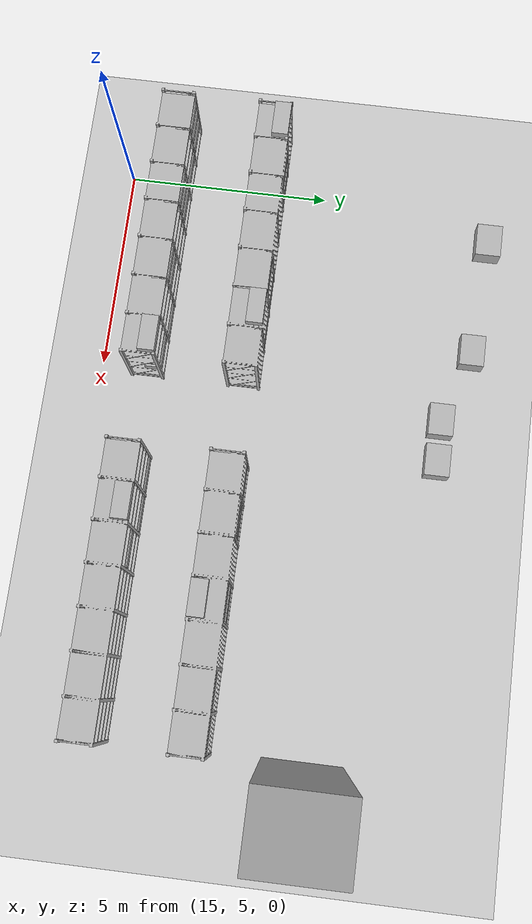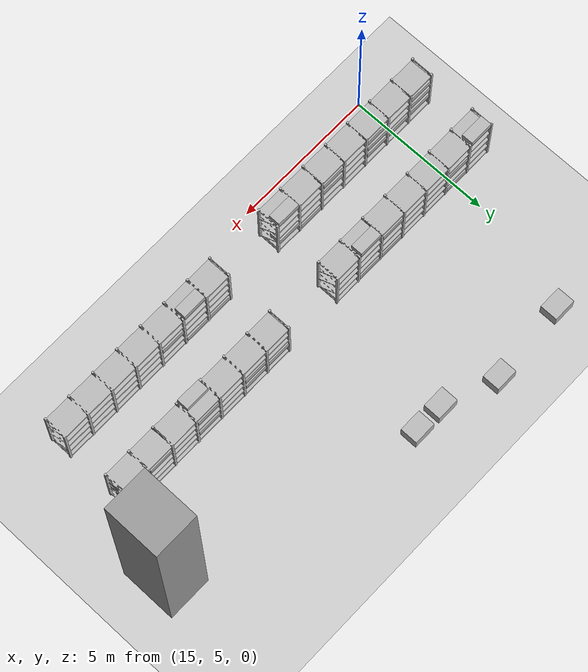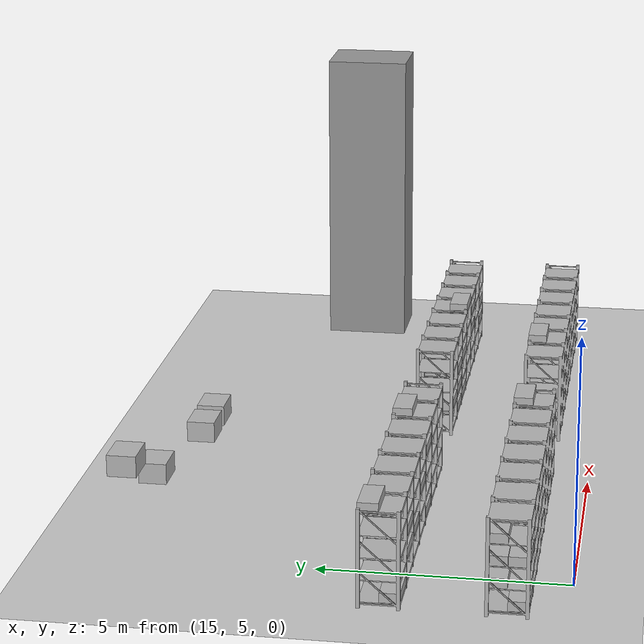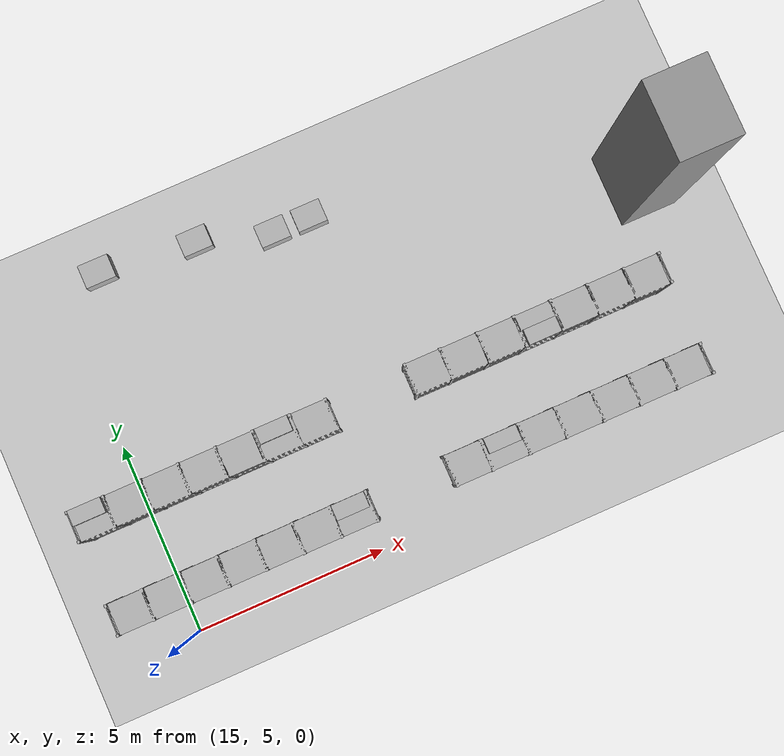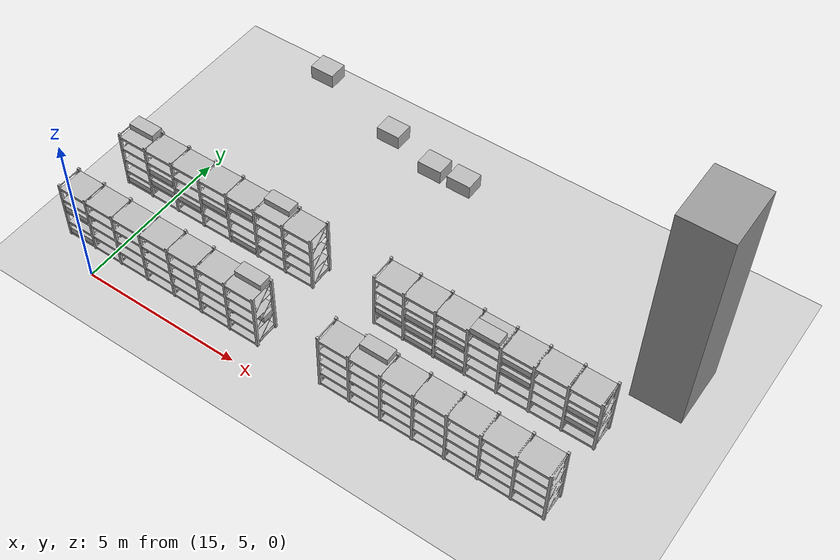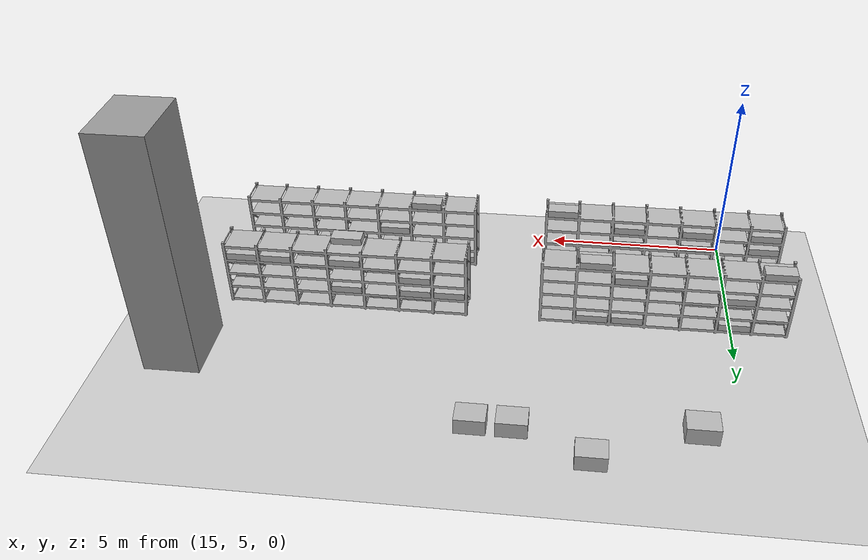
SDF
<sdf version="1.6">
 <world name="default">
  <model name="ground_plane">
   <static>1</static>
   <link name="link">
    <collision name="collision">
     <geometry><plane><normal>0 0 1</normal><size>100 100</size></plane></geometry>
     <surface><friction><ode><mu>100</mu><mu2>50</mu2></ode></friction></surface>
    </collision>
    <visual name="visual">
     <cast_shadows>0</cast_shadows>
     <geometry><plane><normal>0 0 1</normal><size>100 100</size></plane></geometry>
     <material>
      <script><uri>file://media/materials/scripts/gazebo.material</uri><name>Gazebo/Grey</name></script>
     </material>
    </visual>
   </link>
  </model>
  <include>
   <name>rack_B4_0</name>
   <uri>model://warehouse_rack_5lvl_7bay</uri>
   <pose>25.662 6.1523 0 0 0 1.5708</pose>
  </include>
  <model name="box_B_091">
   <pose>24.691 6.3573 1.102 0 0 1.5708</pose>
   <link name="link">
    <inertial>
     <mass>4.0</mass>
     <inertia><ixx>0.25417</ixx><iyy>0.06667</iyy><izz>0.29417</izz><ixy>0</ixy><ixz>0</ixz><iyz>0</iyz></inertia>
    </inertial>
    <collision name="collision">
     <geometry><box><size>0.4 0.85 0.2</size></box></geometry>
     <surface><friction><ode><mu>1.0</mu><mu2>1.0</mu2></ode></friction></surface>
    </collision>
    <visual name="visual">
     <cast_shadows>0</cast_shadows>
     <geometry><box><size>0.4 0.85 0.2</size></box></geometry>
     <material>
      <script>
       <uri>model://labeled_boxes/materials/scripts</uri>
       <uri>model://labeled_boxes/materials/textures</uri>
       <name>LabeledBox/B-091</name>
      </script>
     </material>
    </visual>
   </link>
  </model>
  <model name="box_B_093">
   <pose>23.72 6.3573 0.202 0 0 1.5708</pose>
   <link name="link">
    <inertial>
     <mass>4.0</mass>
     <inertia><ixx>0.25417</ixx><iyy>0.06667</iyy><izz>0.29417</izz><ixy>0</ixy><ixz>0</ixz><iyz>0</iyz></inertia>
    </inertial>
    <collision name="collision">
     <geometry><box><size>0.4 0.85 0.2</size></box></geometry>
     <surface><friction><ode><mu>1.0</mu><mu2>1.0</mu2></ode></friction></surface>
    </collision>
    <visual name="visual">
     <cast_shadows>0</cast_shadows>
     <geometry><box><size>0.4 0.85 0.2</size></box></geometry>
     <material>
      <script>
       <uri>model://labeled_boxes/materials/scripts</uri>
       <uri>model://labeled_boxes/materials/textures</uri>
       <name>LabeledBox/B-093</name>
      </script>
     </material>
    </visual>
   </link>
  </model>
  <model name="box_B_094">
   <pose>23.72 6.3573 2.002 0 0 1.5708</pose>
   <link name="link">
    <inertial>
     <mass>4.0</mass>
     <inertia><ixx>0.25417</ixx><iyy>0.06667</iyy><izz>0.29417</izz><ixy>0</ixy><ixz>0</ixz><iyz>0</iyz></inertia>
    </inertial>
    <collision name="collision">
     <geometry><box><size>0.4 0.85 0.2</size></box></geometry>
     <surface><friction><ode><mu>1.0</mu><mu2>1.0</mu2></ode></friction></surface>
    </collision>
    <visual name="visual">
     <cast_shadows>0</cast_shadows>
     <geometry><box><size>0.4 0.85 0.2</size></box></geometry>
     <material>
      <script>
       <uri>model://labeled_boxes/materials/scripts</uri>
       <uri>model://labeled_boxes/materials/textures</uri>
       <name>LabeledBox/B-094</name>
      </script>
     </material>
    </visual>
   </link>
  </model>
  <model name="box_B_096">
   <pose>22.766 6.3573 0.202 0 0 1.5708</pose>
   <link name="link">
    <inertial>
     <mass>4.0</mass>
     <inertia><ixx>0.25417</ixx><iyy>0.06667</iyy><izz>0.29417</izz><ixy>0</ixy><ixz>0</ixz><iyz>0</iyz></inertia>
    </inertial>
    <collision name="collision">
     <geometry><box><size>0.4 0.85 0.2</size></box></geometry>
     <surface><friction><ode><mu>1.0</mu><mu2>1.0</mu2></ode></friction></surface>
    </collision>
    <visual name="visual">
     <cast_shadows>0</cast_shadows>
     <geometry><box><size>0.4 0.85 0.2</size></box></geometry>
     <material>
      <script>
       <uri>model://labeled_boxes/materials/scripts</uri>
       <uri>model://labeled_boxes/materials/textures</uri>
       <name>LabeledBox/B-096</name>
      </script>
     </material>
    </visual>
   </link>
  </model>
  <include>
   <name>rack_B4_1</name>
   <uri>model://warehouse_rack_5lvl_7bay</uri>
   <pose>16.862 6.1523 0 0 0 1.5708</pose>
  </include>
  <model name="box_B_097">
   <pose>19.759 6.3573 0.652 0 0 1.5708</pose>
   <link name="link">
    <inertial>
     <mass>4.0</mass>
     <inertia><ixx>0.25417</ixx><iyy>0.06667</iyy><izz>0.29417</izz><ixy>0</ixy><ixz>0</ixz><iyz>0</iyz></inertia>
    </inertial>
    <collision name="collision">
     <geometry><box><size>0.4 0.85 0.2</size></box></geometry>
     <surface><friction><ode><mu>1.0</mu><mu2>1.0</mu2></ode></friction></surface>
    </collision>
    <visual name="visual">
     <cast_shadows>0</cast_shadows>
     <geometry><box><size>0.4 0.85 0.2</size></box></geometry>
     <material>
      <script>
       <uri>model://labeled_boxes/materials/scripts</uri>
       <uri>model://labeled_boxes/materials/textures</uri>
       <name>LabeledBox/B-097</name>
      </script>
     </material>
    </visual>
   </link>
  </model>
  <model name="box_B_101">
   <pose>19.759 6.3573 2.002 0 0 1.5708</pose>
   <link name="link">
    <inertial>
     <mass>4.0</mass>
     <inertia><ixx>0.25417</ixx><iyy>0.06667</iyy><izz>0.29417</izz><ixy>0</ixy><ixz>0</ixz><iyz>0</iyz></inertia>
    </inertial>
    <collision name="collision">
     <geometry><box><size>0.4 0.85 0.2</size></box></geometry>
     <surface><friction><ode><mu>1.0</mu><mu2>1.0</mu2></ode></friction></surface>
    </collision>
    <visual name="visual">
     <cast_shadows>0</cast_shadows>
     <geometry><box><size>0.4 0.85 0.2</size></box></geometry>
     <material>
      <script>
       <uri>model://labeled_boxes/materials/scripts</uri>
       <uri>model://labeled_boxes/materials/textures</uri>
       <name>LabeledBox/B-101</name>
      </script>
     </material>
    </visual>
   </link>
  </model>
  <model name="box_B_102">
   <pose>18.805 6.3573 0.202 0 0 1.5708</pose>
   <link name="link">
    <inertial>
     <mass>4.0</mass>
     <inertia><ixx>0.25417</ixx><iyy>0.06667</iyy><izz>0.29417</izz><ixy>0</ixy><ixz>0</ixz><iyz>0</iyz></inertia>
    </inertial>
    <collision name="collision">
     <geometry><box><size>0.4 0.85 0.2</size></box></geometry>
     <surface><friction><ode><mu>1.0</mu><mu2>1.0</mu2></ode></friction></surface>
    </collision>
    <visual name="visual">
     <cast_shadows>0</cast_shadows>
     <geometry><box><size>0.4 0.85 0.2</size></box></geometry>
     <material>
      <script>
       <uri>model://labeled_boxes/materials/scripts</uri>
       <uri>model://labeled_boxes/materials/textures</uri>
       <name>LabeledBox/B-102</name>
      </script>
     </material>
    </visual>
   </link>
  </model>
  <model name="box_B_103">
   <pose>17.834 6.3573 1.102 0 0 1.5708</pose>
   <link name="link">
    <inertial>
     <mass>4.0</mass>
     <inertia><ixx>0.25417</ixx><iyy>0.06667</iyy><izz>0.29417</izz><ixy>0</ixy><ixz>0</ixz><iyz>0</iyz></inertia>
    </inertial>
    <collision name="collision">
     <geometry><box><size>0.4 0.85 0.2</size></box></geometry>
     <surface><friction><ode><mu>1.0</mu><mu2>1.0</mu2></ode></friction></surface>
    </collision>
    <visual name="visual">
     <cast_shadows>0</cast_shadows>
     <geometry><box><size>0.4 0.85 0.2</size></box></geometry>
     <material>
      <script>
       <uri>model://labeled_boxes/materials/scripts</uri>
       <uri>model://labeled_boxes/materials/textures</uri>
       <name>LabeledBox/B-103</name>
      </script>
     </material>
    </visual>
   </link>
  </model>
  <model name="box_B_105">
   <pose>17.834 6.3573 1.552 0 0 1.5708</pose>
   <link name="link">
    <inertial>
     <mass>4.0</mass>
     <inertia><ixx>0.25417</ixx><iyy>0.06667</iyy><izz>0.29417</izz><ixy>0</ixy><ixz>0</ixz><iyz>0</iyz></inertia>
    </inertial>
    <collision name="collision">
     <geometry><box><size>0.4 0.85 0.2</size></box></geometry>
     <surface><friction><ode><mu>1.0</mu><mu2>1.0</mu2></ode></friction></surface>
    </collision>
    <visual name="visual">
     <cast_shadows>0</cast_shadows>
     <geometry><box><size>0.4 0.85 0.2</size></box></geometry>
     <material>
      <script>
       <uri>model://labeled_boxes/materials/scripts</uri>
       <uri>model://labeled_boxes/materials/textures</uri>
       <name>LabeledBox/B-105</name>
      </script>
     </material>
    </visual>
   </link>
  </model>
  <model name="box_B_108">
   <pose>15.891 6.3573 0.652 0 0 1.5708</pose>
   <link name="link">
    <inertial>
     <mass>4.0</mass>
     <inertia><ixx>0.25417</ixx><iyy>0.06667</iyy><izz>0.29417</izz><ixy>0</ixy><ixz>0</ixz><iyz>0</iyz></inertia>
    </inertial>
    <collision name="collision">
     <geometry><box><size>0.4 0.85 0.2</size></box></geometry>
     <surface><friction><ode><mu>1.0</mu><mu2>1.0</mu2></ode></friction></surface>
    </collision>
    <visual name="visual">
     <cast_shadows>0</cast_shadows>
     <geometry><box><size>0.4 0.85 0.2</size></box></geometry>
     <material>
      <script>
       <uri>model://labeled_boxes/materials/scripts</uri>
       <uri>model://labeled_boxes/materials/textures</uri>
       <name>LabeledBox/B-108</name>
      </script>
     </material>
    </visual>
   </link>
  </model>
  <model name="box_B_109">
   <pose>15.891 6.3573 1.102 0 0 1.5708</pose>
   <link name="link">
    <inertial>
     <mass>4.0</mass>
     <inertia><ixx>0.25417</ixx><iyy>0.06667</iyy><izz>0.29417</izz><ixy>0</ixy><ixz>0</ixz><iyz>0</iyz></inertia>
    </inertial>
    <collision name="collision">
     <geometry><box><size>0.4 0.85 0.2</size></box></geometry>
     <surface><friction><ode><mu>1.0</mu><mu2>1.0</mu2></ode></friction></surface>
    </collision>
    <visual name="visual">
     <cast_shadows>0</cast_shadows>
     <geometry><box><size>0.4 0.85 0.2</size></box></geometry>
     <material>
      <script>
       <uri>model://labeled_boxes/materials/scripts</uri>
       <uri>model://labeled_boxes/materials/textures</uri>
       <name>LabeledBox/B-109</name>
      </script>
     </material>
    </visual>
   </link>
  </model>
  <model name="box_B_111">
   <pose>15.891 6.3573 1.552 0 0 1.5708</pose>
   <link name="link">
    <inertial>
     <mass>4.0</mass>
     <inertia><ixx>0.25417</ixx><iyy>0.06667</iyy><izz>0.29417</izz><ixy>0</ixy><ixz>0</ixz><iyz>0</iyz></inertia>
    </inertial>
    <collision name="collision">
     <geometry><box><size>0.4 0.85 0.2</size></box></geometry>
     <surface><friction><ode><mu>1.0</mu><mu2>1.0</mu2></ode></friction></surface>
    </collision>
    <visual name="visual">
     <cast_shadows>0</cast_shadows>
     <geometry><box><size>0.4 0.85 0.2</size></box></geometry>
     <material>
      <script>
       <uri>model://labeled_boxes/materials/scripts</uri>
       <uri>model://labeled_boxes/materials/textures</uri>
       <name>LabeledBox/B-111</name>
      </script>
     </material>
    </visual>
   </link>
  </model>
  <model name="box_B_112">
   <pose>14.92 6.3573 0.652 0 0 1.5708</pose>
   <link name="link">
    <inertial>
     <mass>4.0</mass>
     <inertia><ixx>0.25417</ixx><iyy>0.06667</iyy><izz>0.29417</izz><ixy>0</ixy><ixz>0</ixz><iyz>0</iyz></inertia>
    </inertial>
    <collision name="collision">
     <geometry><box><size>0.4 0.85 0.2</size></box></geometry>
     <surface><friction><ode><mu>1.0</mu><mu2>1.0</mu2></ode></friction></surface>
    </collision>
    <visual name="visual">
     <cast_shadows>0</cast_shadows>
     <geometry><box><size>0.4 0.85 0.2</size></box></geometry>
     <material>
      <script>
       <uri>model://labeled_boxes/materials/scripts</uri>
       <uri>model://labeled_boxes/materials/textures</uri>
       <name>LabeledBox/B-112</name>
      </script>
     </material>
    </visual>
   </link>
  </model>
  <model name="box_B_114">
   <pose>13.966 5.9473 0.202 0 0 1.5708</pose>
   <link name="link">
    <inertial>
     <mass>4.0</mass>
     <inertia><ixx>0.25417</ixx><iyy>0.06667</iyy><izz>0.29417</izz><ixy>0</ixy><ixz>0</ixz><iyz>0</iyz></inertia>
    </inertial>
    <collision name="collision">
     <geometry><box><size>0.4 0.85 0.2</size></box></geometry>
     <surface><friction><ode><mu>1.0</mu><mu2>1.0</mu2></ode></friction></surface>
    </collision>
    <visual name="visual">
     <cast_shadows>0</cast_shadows>
     <geometry><box><size>0.4 0.85 0.2</size></box></geometry>
     <material>
      <script>
       <uri>model://labeled_boxes/materials/scripts</uri>
       <uri>model://labeled_boxes/materials/textures</uri>
       <name>LabeledBox/B-114</name>
      </script>
     </material>
    </visual>
   </link>
  </model>
  <model name="box_B_115">
   <pose>13.966 6.3573 0.652 0 0 1.5708</pose>
   <link name="link">
    <inertial>
     <mass>4.0</mass>
     <inertia><ixx>0.25417</ixx><iyy>0.06667</iyy><izz>0.29417</izz><ixy>0</ixy><ixz>0</ixz><iyz>0</iyz></inertia>
    </inertial>
    <collision name="collision">
     <geometry><box><size>0.4 0.85 0.2</size></box></geometry>
     <surface><friction><ode><mu>1.0</mu><mu2>1.0</mu2></ode></friction></surface>
    </collision>
    <visual name="visual">
     <cast_shadows>0</cast_shadows>
     <geometry><box><size>0.4 0.85 0.2</size></box></geometry>
     <material>
      <script>
       <uri>model://labeled_boxes/materials/scripts</uri>
       <uri>model://labeled_boxes/materials/textures</uri>
       <name>LabeledBox/B-115</name>
      </script>
     </material>
    </visual>
   </link>
  </model>
  <model name="box_B_116">
   <pose>13.966 5.9473 1.102 0 0 1.5708</pose>
   <link name="link">
    <inertial>
     <mass>4.0</mass>
     <inertia><ixx>0.25417</ixx><iyy>0.06667</iyy><izz>0.29417</izz><ixy>0</ixy><ixz>0</ixz><iyz>0</iyz></inertia>
    </inertial>
    <collision name="collision">
     <geometry><box><size>0.4 0.85 0.2</size></box></geometry>
     <surface><friction><ode><mu>1.0</mu><mu2>1.0</mu2></ode></friction></surface>
    </collision>
    <visual name="visual">
     <cast_shadows>0</cast_shadows>
     <geometry><box><size>0.4 0.85 0.2</size></box></geometry>
     <material>
      <script>
       <uri>model://labeled_boxes/materials/scripts</uri>
       <uri>model://labeled_boxes/materials/textures</uri>
       <name>LabeledBox/B-116</name>
      </script>
     </material>
    </visual>
   </link>
  </model>
  <model name="box_B_117">
   <pose>13.966 6.3573 1.102 0 0 1.5708</pose>
   <link name="link">
    <inertial>
     <mass>4.0</mass>
     <inertia><ixx>0.25417</ixx><iyy>0.06667</iyy><izz>0.29417</izz><ixy>0</ixy><ixz>0</ixz><iyz>0</iyz></inertia>
    </inertial>
    <collision name="collision">
     <geometry><box><size>0.4 0.85 0.2</size></box></geometry>
     <surface><friction><ode><mu>1.0</mu><mu2>1.0</mu2></ode></friction></surface>
    </collision>
    <visual name="visual">
     <cast_shadows>0</cast_shadows>
     <geometry><box><size>0.4 0.85 0.2</size></box></geometry>
     <material>
      <script>
       <uri>model://labeled_boxes/materials/scripts</uri>
       <uri>model://labeled_boxes/materials/textures</uri>
       <name>LabeledBox/B-117</name>
      </script>
     </material>
    </visual>
   </link>
  </model>
  <model name="box_B_118">
   <pose>13.966 6.3573 1.552 0 0 1.5708</pose>
   <link name="link">
    <inertial>
     <mass>4.0</mass>
     <inertia><ixx>0.25417</ixx><iyy>0.06667</iyy><izz>0.29417</izz><ixy>0</ixy><ixz>0</ixz><iyz>0</iyz></inertia>
    </inertial>
    <collision name="collision">
     <geometry><box><size>0.4 0.85 0.2</size></box></geometry>
     <surface><friction><ode><mu>1.0</mu><mu2>1.0</mu2></ode></friction></surface>
    </collision>
    <visual name="visual">
     <cast_shadows>0</cast_shadows>
     <geometry><box><size>0.4 0.85 0.2</size></box></geometry>
     <material>
      <script>
       <uri>model://labeled_boxes/materials/scripts</uri>
       <uri>model://labeled_boxes/materials/textures</uri>
       <name>LabeledBox/B-118</name>
      </script>
     </material>
    </visual>
   </link>
  </model>
  <include>
   <name>rack_B5_0</name>
   <uri>model://warehouse_rack_5lvl_7bay</uri>
   <pose>25.662 8.5523 0 0 0 1.5708</pose>
  </include>
  <model name="box_B_119">
   <pose>28.559 8.3473 0.652 0 0 1.5708</pose>
   <link name="link">
    <inertial>
     <mass>4.0</mass>
     <inertia><ixx>0.25417</ixx><iyy>0.06667</iyy><izz>0.29417</izz><ixy>0</ixy><ixz>0</ixz><iyz>0</iyz></inertia>
    </inertial>
    <collision name="collision">
     <geometry><box><size>0.4 0.85 0.2</size></box></geometry>
     <surface><friction><ode><mu>1.0</mu><mu2>1.0</mu2></ode></friction></surface>
    </collision>
    <visual name="visual">
     <cast_shadows>0</cast_shadows>
     <geometry><box><size>0.4 0.85 0.2</size></box></geometry>
     <material>
      <script>
       <uri>model://labeled_boxes/materials/scripts</uri>
       <uri>model://labeled_boxes/materials/textures</uri>
       <name>LabeledBox/B-119</name>
      </script>
     </material>
    </visual>
   </link>
  </model>
  <model name="box_B_120">
   <pose>28.559 8.3473 1.102 0 0 1.5708</pose>
   <link name="link">
    <inertial>
     <mass>4.0</mass>
     <inertia><ixx>0.25417</ixx><iyy>0.06667</iyy><izz>0.29417</izz><ixy>0</ixy><ixz>0</ixz><iyz>0</iyz></inertia>
    </inertial>
    <collision name="collision">
     <geometry><box><size>0.4 0.85 0.2</size></box></geometry>
     <surface><friction><ode><mu>1.0</mu><mu2>1.0</mu2></ode></friction></surface>
    </collision>
    <visual name="visual">
     <cast_shadows>0</cast_shadows>
     <geometry><box><size>0.4 0.85 0.2</size></box></geometry>
     <material>
      <script>
       <uri>model://labeled_boxes/materials/scripts</uri>
       <uri>model://labeled_boxes/materials/textures</uri>
       <name>LabeledBox/B-120</name>
      </script>
     </material>
    </visual>
   </link>
  </model>
  <model name="box_B_121">
   <pose>28.559 8.7573 1.552 0 0 1.5708</pose>
   <link name="link">
    <inertial>
     <mass>4.0</mass>
     <inertia><ixx>0.25417</ixx><iyy>0.06667</iyy><izz>0.29417</izz><ixy>0</ixy><ixz>0</ixz><iyz>0</iyz></inertia>
    </inertial>
    <collision name="collision">
     <geometry><box><size>0.4 0.85 0.2</size></box></geometry>
     <surface><friction><ode><mu>1.0</mu><mu2>1.0</mu2></ode></friction></surface>
    </collision>
    <visual name="visual">
     <cast_shadows>0</cast_shadows>
     <geometry><box><size>0.4 0.85 0.2</size></box></geometry>
     <material>
      <script>
       <uri>model://labeled_boxes/materials/scripts</uri>
       <uri>model://labeled_boxes/materials/textures</uri>
       <name>LabeledBox/B-121</name>
      </script>
     </material>
    </visual>
   </link>
  </model>
  <model name="box_B_122">
   <pose>27.605 8.7573 1.552 0 0 1.5708</pose>
   <link name="link">
    <inertial>
     <mass>4.0</mass>
     <inertia><ixx>0.25417</ixx><iyy>0.06667</iyy><izz>0.29417</izz><ixy>0</ixy><ixz>0</ixz><iyz>0</iyz></inertia>
    </inertial>
    <collision name="collision">
     <geometry><box><size>0.4 0.85 0.2</size></box></geometry>
     <surface><friction><ode><mu>1.0</mu><mu2>1.0</mu2></ode></friction></surface>
    </collision>
    <visual name="visual">
     <cast_shadows>0</cast_shadows>
     <geometry><box><size>0.4 0.85 0.2</size></box></geometry>
     <material>
      <script>
       <uri>model://labeled_boxes/materials/scripts</uri>
       <uri>model://labeled_boxes/materials/textures</uri>
       <name>LabeledBox/B-122</name>
      </script>
     </material>
    </visual>
   </link>
  </model>
  <model name="box_B_123">
   <pose>26.634 8.3473 1.102 0 0 1.5708</pose>
   <link name="link">
    <inertial>
     <mass>4.0</mass>
     <inertia><ixx>0.25417</ixx><iyy>0.06667</iyy><izz>0.29417</izz><ixy>0</ixy><ixz>0</ixz><iyz>0</iyz></inertia>
    </inertial>
    <collision name="collision">
     <geometry><box><size>0.4 0.85 0.2</size></box></geometry>
     <surface><friction><ode><mu>1.0</mu><mu2>1.0</mu2></ode></friction></surface>
    </collision>
    <visual name="visual">
     <cast_shadows>0</cast_shadows>
     <geometry><box><size>0.4 0.85 0.2</size></box></geometry>
     <material>
      <script>
       <uri>model://labeled_boxes/materials/scripts</uri>
       <uri>model://labeled_boxes/materials/textures</uri>
       <name>LabeledBox/B-123</name>
      </script>
     </material>
    </visual>
   </link>
  </model>
  <model name="box_B_124">
   <pose>26.634 8.3473 1.552 0 0 1.5708</pose>
   <link name="link">
    <inertial>
     <mass>4.0</mass>
     <inertia><ixx>0.25417</ixx><iyy>0.06667</iyy><izz>0.29417</izz><ixy>0</ixy><ixz>0</ixz><iyz>0</iyz></inertia>
    </inertial>
    <collision name="collision">
     <geometry><box><size>0.4 0.85 0.2</size></box></geometry>
     <surface><friction><ode><mu>1.0</mu><mu2>1.0</mu2></ode></friction></surface>
    </collision>
    <visual name="visual">
     <cast_shadows>0</cast_shadows>
     <geometry><box><size>0.4 0.85 0.2</size></box></geometry>
     <material>
      <script>
       <uri>model://labeled_boxes/materials/scripts</uri>
       <uri>model://labeled_boxes/materials/textures</uri>
       <name>LabeledBox/B-124</name>
      </script>
     </material>
    </visual>
   </link>
  </model>
  <model name="box_B_125">
   <pose>25.662 8.7573 0.652 0 0 1.5708</pose>
   <link name="link">
    <inertial>
     <mass>4.0</mass>
     <inertia><ixx>0.25417</ixx><iyy>0.06667</iyy><izz>0.29417</izz><ixy>0</ixy><ixz>0</ixz><iyz>0</iyz></inertia>
    </inertial>
    <collision name="collision">
     <geometry><box><size>0.4 0.85 0.2</size></box></geometry>
     <surface><friction><ode><mu>1.0</mu><mu2>1.0</mu2></ode></friction></surface>
    </collision>
    <visual name="visual">
     <cast_shadows>0</cast_shadows>
     <geometry><box><size>0.4 0.85 0.2</size></box></geometry>
     <material>
      <script>
       <uri>model://labeled_boxes/materials/scripts</uri>
       <uri>model://labeled_boxes/materials/textures</uri>
       <name>LabeledBox/B-125</name>
      </script>
     </material>
    </visual>
   </link>
  </model>
  <model name="box_B_126">
   <pose>25.662 8.7573 1.552 0 0 1.5708</pose>
   <link name="link">
    <inertial>
     <mass>4.0</mass>
     <inertia><ixx>0.25417</ixx><iyy>0.06667</iyy><izz>0.29417</izz><ixy>0</ixy><ixz>0</ixz><iyz>0</iyz></inertia>
    </inertial>
    <collision name="collision">
     <geometry><box><size>0.4 0.85 0.2</size></box></geometry>
     <surface><friction><ode><mu>1.0</mu><mu2>1.0</mu2></ode></friction></surface>
    </collision>
    <visual name="visual">
     <cast_shadows>0</cast_shadows>
     <geometry><box><size>0.4 0.85 0.2</size></box></geometry>
     <material>
      <script>
       <uri>model://labeled_boxes/materials/scripts</uri>
       <uri>model://labeled_boxes/materials/textures</uri>
       <name>LabeledBox/B-126</name>
      </script>
     </material>
    </visual>
   </link>
  </model>
  <model name="box_B_127">
   <pose>25.662 8.3473 2.002 0 0 1.5708</pose>
   <link name="link">
    <inertial>
     <mass>4.0</mass>
     <inertia><ixx>0.25417</ixx><iyy>0.06667</iyy><izz>0.29417</izz><ixy>0</ixy><ixz>0</ixz><iyz>0</iyz></inertia>
    </inertial>
    <collision name="collision">
     <geometry><box><size>0.4 0.85 0.2</size></box></geometry>
     <surface><friction><ode><mu>1.0</mu><mu2>1.0</mu2></ode></friction></surface>
    </collision>
    <visual name="visual">
     <cast_shadows>0</cast_shadows>
     <geometry><box><size>0.4 0.85 0.2</size></box></geometry>
     <material>
      <script>
       <uri>model://labeled_boxes/materials/scripts</uri>
       <uri>model://labeled_boxes/materials/textures</uri>
       <name>LabeledBox/B-127</name>
      </script>
     </material>
    </visual>
   </link>
  </model>
  <model name="box_B_128">
   <pose>24.691 8.3473 0.202 0 0 1.5708</pose>
   <link name="link">
    <inertial>
     <mass>4.0</mass>
     <inertia><ixx>0.25417</ixx><iyy>0.06667</iyy><izz>0.29417</izz><ixy>0</ixy><ixz>0</ixz><iyz>0</iyz></inertia>
    </inertial>
    <collision name="collision">
     <geometry><box><size>0.4 0.85 0.2</size></box></geometry>
     <surface><friction><ode><mu>1.0</mu><mu2>1.0</mu2></ode></friction></surface>
    </collision>
    <visual name="visual">
     <cast_shadows>0</cast_shadows>
     <geometry><box><size>0.4 0.85 0.2</size></box></geometry>
     <material>
      <script>
       <uri>model://labeled_boxes/materials/scripts</uri>
       <uri>model://labeled_boxes/materials/textures</uri>
       <name>LabeledBox/B-128</name>
      </script>
     </material>
    </visual>
   </link>
  </model>
  <model name="box_B_129">
   <pose>24.691 8.3473 1.102 0 0 1.5708</pose>
   <link name="link">
    <inertial>
     <mass>4.0</mass>
     <inertia><ixx>0.25417</ixx><iyy>0.06667</iyy><izz>0.29417</izz><ixy>0</ixy><ixz>0</ixz><iyz>0</iyz></inertia>
    </inertial>
    <collision name="collision">
     <geometry><box><size>0.4 0.85 0.2</size></box></geometry>
     <surface><friction><ode><mu>1.0</mu><mu2>1.0</mu2></ode></friction></surface>
    </collision>
    <visual name="visual">
     <cast_shadows>0</cast_shadows>
     <geometry><box><size>0.4 0.85 0.2</size></box></geometry>
     <material>
      <script>
       <uri>model://labeled_boxes/materials/scripts</uri>
       <uri>model://labeled_boxes/materials/textures</uri>
       <name>LabeledBox/B-129</name>
      </script>
     </material>
    </visual>
   </link>
  </model>
  <model name="box_B_130">
   <pose>23.72 8.3473 0.202 0 0 1.5708</pose>
   <link name="link">
    <inertial>
     <mass>4.0</mass>
     <inertia><ixx>0.25417</ixx><iyy>0.06667</iyy><izz>0.29417</izz><ixy>0</ixy><ixz>0</ixz><iyz>0</iyz></inertia>
    </inertial>
    <collision name="collision">
     <geometry><box><size>0.4 0.85 0.2</size></box></geometry>
     <surface><friction><ode><mu>1.0</mu><mu2>1.0</mu2></ode></friction></surface>
    </collision>
    <visual name="visual">
     <cast_shadows>0</cast_shadows>
     <geometry><box><size>0.4 0.85 0.2</size></box></geometry>
     <material>
      <script>
       <uri>model://labeled_boxes/materials/scripts</uri>
       <uri>model://labeled_boxes/materials/textures</uri>
       <name>LabeledBox/B-130</name>
      </script>
     </material>
    </visual>
   </link>
  </model>
  <model name="box_B_131">
   <pose>23.72 8.3473 0.652 0 0 1.5708</pose>
   <link name="link">
    <inertial>
     <mass>4.0</mass>
     <inertia><ixx>0.25417</ixx><iyy>0.06667</iyy><izz>0.29417</izz><ixy>0</ixy><ixz>0</ixz><iyz>0</iyz></inertia>
    </inertial>
    <collision name="collision">
     <geometry><box><size>0.4 0.85 0.2</size></box></geometry>
     <surface><friction><ode><mu>1.0</mu><mu2>1.0</mu2></ode></friction></surface>
    </collision>
    <visual name="visual">
     <cast_shadows>0</cast_shadows>
     <geometry><box><size>0.4 0.85 0.2</size></box></geometry>
     <material>
      <script>
       <uri>model://labeled_boxes/materials/scripts</uri>
       <uri>model://labeled_boxes/materials/textures</uri>
       <name>LabeledBox/B-131</name>
      </script>
     </material>
    </visual>
   </link>
  </model>
  <model name="box_B_132">
   <pose>23.72 8.7573 0.652 0 0 1.5708</pose>
   <link name="link">
    <inertial>
     <mass>4.0</mass>
     <inertia><ixx>0.25417</ixx><iyy>0.06667</iyy><izz>0.29417</izz><ixy>0</ixy><ixz>0</ixz><iyz>0</iyz></inertia>
    </inertial>
    <collision name="collision">
     <geometry><box><size>0.4 0.85 0.2</size></box></geometry>
     <surface><friction><ode><mu>1.0</mu><mu2>1.0</mu2></ode></friction></surface>
    </collision>
    <visual name="visual">
     <cast_shadows>0</cast_shadows>
     <geometry><box><size>0.4 0.85 0.2</size></box></geometry>
     <material>
      <script>
       <uri>model://labeled_boxes/materials/scripts</uri>
       <uri>model://labeled_boxes/materials/textures</uri>
       <name>LabeledBox/B-132</name>
      </script>
     </material>
    </visual>
   </link>
  </model>
  <model name="box_B_133">
   <pose>23.72 8.3473 1.102 0 0 1.5708</pose>
   <link name="link">
    <inertial>
     <mass>4.0</mass>
     <inertia><ixx>0.25417</ixx><iyy>0.06667</iyy><izz>0.29417</izz><ixy>0</ixy><ixz>0</ixz><iyz>0</iyz></inertia>
    </inertial>
    <collision name="collision">
     <geometry><box><size>0.4 0.85 0.2</size></box></geometry>
     <surface><friction><ode><mu>1.0</mu><mu2>1.0</mu2></ode></friction></surface>
    </collision>
    <visual name="visual">
     <cast_shadows>0</cast_shadows>
     <geometry><box><size>0.4 0.85 0.2</size></box></geometry>
     <material>
      <script>
       <uri>model://labeled_boxes/materials/scripts</uri>
       <uri>model://labeled_boxes/materials/textures</uri>
       <name>LabeledBox/B-133</name>
      </script>
     </material>
    </visual>
   </link>
  </model>
  <model name="box_B_134">
   <pose>23.72 8.7573 1.102 0 0 1.5708</pose>
   <link name="link">
    <inertial>
     <mass>4.0</mass>
     <inertia><ixx>0.25417</ixx><iyy>0.06667</iyy><izz>0.29417</izz><ixy>0</ixy><ixz>0</ixz><iyz>0</iyz></inertia>
    </inertial>
    <collision name="collision">
     <geometry><box><size>0.4 0.85 0.2</size></box></geometry>
     <surface><friction><ode><mu>1.0</mu><mu2>1.0</mu2></ode></friction></surface>
    </collision>
    <visual name="visual">
     <cast_shadows>0</cast_shadows>
     <geometry><box><size>0.4 0.85 0.2</size></box></geometry>
     <material>
      <script>
       <uri>model://labeled_boxes/materials/scripts</uri>
       <uri>model://labeled_boxes/materials/textures</uri>
       <name>LabeledBox/B-134</name>
      </script>
     </material>
    </visual>
   </link>
  </model>
  <model name="box_B_135">
   <pose>22.766 8.3473 0.652 0 0 1.5708</pose>
   <link name="link">
    <inertial>
     <mass>4.0</mass>
     <inertia><ixx>0.25417</ixx><iyy>0.06667</iyy><izz>0.29417</izz><ixy>0</ixy><ixz>0</ixz><iyz>0</iyz></inertia>
    </inertial>
    <collision name="collision">
     <geometry><box><size>0.4 0.85 0.2</size></box></geometry>
     <surface><friction><ode><mu>1.0</mu><mu2>1.0</mu2></ode></friction></surface>
    </collision>
    <visual name="visual">
     <cast_shadows>0</cast_shadows>
     <geometry><box><size>0.4 0.85 0.2</size></box></geometry>
     <material>
      <script>
       <uri>model://labeled_boxes/materials/scripts</uri>
       <uri>model://labeled_boxes/materials/textures</uri>
       <name>LabeledBox/B-135</name>
      </script>
     </material>
    </visual>
   </link>
  </model>
  <model name="box_B_136">
   <pose>22.766 8.7573 0.652 0 0 1.5708</pose>
   <link name="link">
    <inertial>
     <mass>4.0</mass>
     <inertia><ixx>0.25417</ixx><iyy>0.06667</iyy><izz>0.29417</izz><ixy>0</ixy><ixz>0</ixz><iyz>0</iyz></inertia>
    </inertial>
    <collision name="collision">
     <geometry><box><size>0.4 0.85 0.2</size></box></geometry>
     <surface><friction><ode><mu>1.0</mu><mu2>1.0</mu2></ode></friction></surface>
    </collision>
    <visual name="visual">
     <cast_shadows>0</cast_shadows>
     <geometry><box><size>0.4 0.85 0.2</size></box></geometry>
     <material>
      <script>
       <uri>model://labeled_boxes/materials/scripts</uri>
       <uri>model://labeled_boxes/materials/textures</uri>
       <name>LabeledBox/B-136</name>
      </script>
     </material>
    </visual>
   </link>
  </model>
  <include>
   <name>rack_B5_1</name>
   <uri>model://warehouse_rack_5lvl_7bay</uri>
   <pose>16.862 8.5523 0 0 0 1.5708</pose>
  </include>
  <model name="box_B_137">
   <pose>18.805 8.7573 0.202 0 0 1.5708</pose>
   <link name="link">
    <inertial>
     <mass>4.0</mass>
     <inertia><ixx>0.25417</ixx><iyy>0.06667</iyy><izz>0.29417</izz><ixy>0</ixy><ixz>0</ixz><iyz>0</iyz></inertia>
    </inertial>
    <collision name="collision">
     <geometry><box><size>0.4 0.85 0.2</size></box></geometry>
     <surface><friction><ode><mu>1.0</mu><mu2>1.0</mu2></ode></friction></surface>
    </collision>
    <visual name="visual">
     <cast_shadows>0</cast_shadows>
     <geometry><box><size>0.4 0.85 0.2</size></box></geometry>
     <material>
      <script>
       <uri>model://labeled_boxes/materials/scripts</uri>
       <uri>model://labeled_boxes/materials/textures</uri>
       <name>LabeledBox/B-137</name>
      </script>
     </material>
    </visual>
   </link>
  </model>
  <model name="box_B_138">
   <pose>18.805 8.7573 2.002 0 0 1.5708</pose>
   <link name="link">
    <inertial>
     <mass>4.0</mass>
     <inertia><ixx>0.25417</ixx><iyy>0.06667</iyy><izz>0.29417</izz><ixy>0</ixy><ixz>0</ixz><iyz>0</iyz></inertia>
    </inertial>
    <collision name="collision">
     <geometry><box><size>0.4 0.85 0.2</size></box></geometry>
     <surface><friction><ode><mu>1.0</mu><mu2>1.0</mu2></ode></friction></surface>
    </collision>
    <visual name="visual">
     <cast_shadows>0</cast_shadows>
     <geometry><box><size>0.4 0.85 0.2</size></box></geometry>
     <material>
      <script>
       <uri>model://labeled_boxes/materials/scripts</uri>
       <uri>model://labeled_boxes/materials/textures</uri>
       <name>LabeledBox/B-138</name>
      </script>
     </material>
    </visual>
   </link>
  </model>
  <model name="box_B_139">
   <pose>17.834 8.3473 0.202 0 0 1.5708</pose>
   <link name="link">
    <inertial>
     <mass>4.0</mass>
     <inertia><ixx>0.25417</ixx><iyy>0.06667</iyy><izz>0.29417</izz><ixy>0</ixy><ixz>0</ixz><iyz>0</iyz></inertia>
    </inertial>
    <collision name="collision">
     <geometry><box><size>0.4 0.85 0.2</size></box></geometry>
     <surface><friction><ode><mu>1.0</mu><mu2>1.0</mu2></ode></friction></surface>
    </collision>
    <visual name="visual">
     <cast_shadows>0</cast_shadows>
     <geometry><box><size>0.4 0.85 0.2</size></box></geometry>
     <material>
      <script>
       <uri>model://labeled_boxes/materials/scripts</uri>
       <uri>model://labeled_boxes/materials/textures</uri>
       <name>LabeledBox/B-139</name>
      </script>
     </material>
    </visual>
   </link>
  </model>
  <model name="box_B_140">
   <pose>17.834 8.7573 0.202 0 0 1.5708</pose>
   <link name="link">
    <inertial>
     <mass>4.0</mass>
     <inertia><ixx>0.25417</ixx><iyy>0.06667</iyy><izz>0.29417</izz><ixy>0</ixy><ixz>0</ixz><iyz>0</iyz></inertia>
    </inertial>
    <collision name="collision">
     <geometry><box><size>0.4 0.85 0.2</size></box></geometry>
     <surface><friction><ode><mu>1.0</mu><mu2>1.0</mu2></ode></friction></surface>
    </collision>
    <visual name="visual">
     <cast_shadows>0</cast_shadows>
     <geometry><box><size>0.4 0.85 0.2</size></box></geometry>
     <material>
      <script>
       <uri>model://labeled_boxes/materials/scripts</uri>
       <uri>model://labeled_boxes/materials/textures</uri>
       <name>LabeledBox/B-140</name>
      </script>
     </material>
    </visual>
   </link>
  </model>
  <model name="box_B_141">
   <pose>17.834 8.3473 1.552 0 0 1.5708</pose>
   <link name="link">
    <inertial>
     <mass>4.0</mass>
     <inertia><ixx>0.25417</ixx><iyy>0.06667</iyy><izz>0.29417</izz><ixy>0</ixy><ixz>0</ixz><iyz>0</iyz></inertia>
    </inertial>
    <collision name="collision">
     <geometry><box><size>0.4 0.85 0.2</size></box></geometry>
     <surface><friction><ode><mu>1.0</mu><mu2>1.0</mu2></ode></friction></surface>
    </collision>
    <visual name="visual">
     <cast_shadows>0</cast_shadows>
     <geometry><box><size>0.4 0.85 0.2</size></box></geometry>
     <material>
      <script>
       <uri>model://labeled_boxes/materials/scripts</uri>
       <uri>model://labeled_boxes/materials/textures</uri>
       <name>LabeledBox/B-141</name>
      </script>
     </material>
    </visual>
   </link>
  </model>
  <model name="box_B_142">
   <pose>17.834 8.7573 1.552 0 0 1.5708</pose>
   <link name="link">
    <inertial>
     <mass>4.0</mass>
     <inertia><ixx>0.25417</ixx><iyy>0.06667</iyy><izz>0.29417</izz><ixy>0</ixy><ixz>0</ixz><iyz>0</iyz></inertia>
    </inertial>
    <collision name="collision">
     <geometry><box><size>0.4 0.85 0.2</size></box></geometry>
     <surface><friction><ode><mu>1.0</mu><mu2>1.0</mu2></ode></friction></surface>
    </collision>
    <visual name="visual">
     <cast_shadows>0</cast_shadows>
     <geometry><box><size>0.4 0.85 0.2</size></box></geometry>
     <material>
      <script>
       <uri>model://labeled_boxes/materials/scripts</uri>
       <uri>model://labeled_boxes/materials/textures</uri>
       <name>LabeledBox/B-142</name>
      </script>
     </material>
    </visual>
   </link>
  </model>
  <model name="box_B_143">
   <pose>16.862 8.3473 1.102 0 0 1.5708</pose>
   <link name="link">
    <inertial>
     <mass>4.0</mass>
     <inertia><ixx>0.25417</ixx><iyy>0.06667</iyy><izz>0.29417</izz><ixy>0</ixy><ixz>0</ixz><iyz>0</iyz></inertia>
    </inertial>
    <collision name="collision">
     <geometry><box><size>0.4 0.85 0.2</size></box></geometry>
     <surface><friction><ode><mu>1.0</mu><mu2>1.0</mu2></ode></friction></surface>
    </collision>
    <visual name="visual">
     <cast_shadows>0</cast_shadows>
     <geometry><box><size>0.4 0.85 0.2</size></box></geometry>
     <material>
      <script>
       <uri>model://labeled_boxes/materials/scripts</uri>
       <uri>model://labeled_boxes/materials/textures</uri>
       <name>LabeledBox/B-143</name>
      </script>
     </material>
    </visual>
   </link>
  </model>
  <model name="box_B_144">
   <pose>15.891 8.3473 0.652 0 0 1.5708</pose>
   <link name="link">
    <inertial>
     <mass>4.0</mass>
     <inertia><ixx>0.25417</ixx><iyy>0.06667</iyy><izz>0.29417</izz><ixy>0</ixy><ixz>0</ixz><iyz>0</iyz></inertia>
    </inertial>
    <collision name="collision">
     <geometry><box><size>0.4 0.85 0.2</size></box></geometry>
     <surface><friction><ode><mu>1.0</mu><mu2>1.0</mu2></ode></friction></surface>
    </collision>
    <visual name="visual">
     <cast_shadows>0</cast_shadows>
     <geometry><box><size>0.4 0.85 0.2</size></box></geometry>
     <material>
      <script>
       <uri>model://labeled_boxes/materials/scripts</uri>
       <uri>model://labeled_boxes/materials/textures</uri>
       <name>LabeledBox/B-144</name>
      </script>
     </material>
    </visual>
   </link>
  </model>
  <model name="box_B_145">
   <pose>14.92 8.7573 0.202 0 0 1.5708</pose>
   <link name="link">
    <inertial>
     <mass>4.0</mass>
     <inertia><ixx>0.25417</ixx><iyy>0.06667</iyy><izz>0.29417</izz><ixy>0</ixy><ixz>0</ixz><iyz>0</iyz></inertia>
    </inertial>
    <collision name="collision">
     <geometry><box><size>0.4 0.85 0.2</size></box></geometry>
     <surface><friction><ode><mu>1.0</mu><mu2>1.0</mu2></ode></friction></surface>
    </collision>
    <visual name="visual">
     <cast_shadows>0</cast_shadows>
     <geometry><box><size>0.4 0.85 0.2</size></box></geometry>
     <material>
      <script>
       <uri>model://labeled_boxes/materials/scripts</uri>
       <uri>model://labeled_boxes/materials/textures</uri>
       <name>LabeledBox/B-145</name>
      </script>
     </material>
    </visual>
   </link>
  </model>
  <model name="box_B_146">
   <pose>14.92 8.3473 0.652 0 0 1.5708</pose>
   <link name="link">
    <inertial>
     <mass>4.0</mass>
     <inertia><ixx>0.25417</ixx><iyy>0.06667</iyy><izz>0.29417</izz><ixy>0</ixy><ixz>0</ixz><iyz>0</iyz></inertia>
    </inertial>
    <collision name="collision">
     <geometry><box><size>0.4 0.85 0.2</size></box></geometry>
     <surface><friction><ode><mu>1.0</mu><mu2>1.0</mu2></ode></friction></surface>
    </collision>
    <visual name="visual">
     <cast_shadows>0</cast_shadows>
     <geometry><box><size>0.4 0.85 0.2</size></box></geometry>
     <material>
      <script>
       <uri>model://labeled_boxes/materials/scripts</uri>
       <uri>model://labeled_boxes/materials/textures</uri>
       <name>LabeledBox/B-146</name>
      </script>
     </material>
    </visual>
   </link>
  </model>
  <model name="box_B_147">
   <pose>14.92 8.3473 1.102 0 0 1.5708</pose>
   <link name="link">
    <inertial>
     <mass>4.0</mass>
     <inertia><ixx>0.25417</ixx><iyy>0.06667</iyy><izz>0.29417</izz><ixy>0</ixy><ixz>0</ixz><iyz>0</iyz></inertia>
    </inertial>
    <collision name="collision">
     <geometry><box><size>0.4 0.85 0.2</size></box></geometry>
     <surface><friction><ode><mu>1.0</mu><mu2>1.0</mu2></ode></friction></surface>
    </collision>
    <visual name="visual">
     <cast_shadows>0</cast_shadows>
     <geometry><box><size>0.4 0.85 0.2</size></box></geometry>
     <material>
      <script>
       <uri>model://labeled_boxes/materials/scripts</uri>
       <uri>model://labeled_boxes/materials/textures</uri>
       <name>LabeledBox/B-147</name>
      </script>
     </material>
    </visual>
   </link>
  </model>
  <model name="box_B_148">
   <pose>14.92 8.7573 1.102 0 0 1.5708</pose>
   <link name="link">
    <inertial>
     <mass>4.0</mass>
     <inertia><ixx>0.25417</ixx><iyy>0.06667</iyy><izz>0.29417</izz><ixy>0</ixy><ixz>0</ixz><iyz>0</iyz></inertia>
    </inertial>
    <collision name="collision">
     <geometry><box><size>0.4 0.85 0.2</size></box></geometry>
     <surface><friction><ode><mu>1.0</mu><mu2>1.0</mu2></ode></friction></surface>
    </collision>
    <visual name="visual">
     <cast_shadows>0</cast_shadows>
     <geometry><box><size>0.4 0.85 0.2</size></box></geometry>
     <material>
      <script>
       <uri>model://labeled_boxes/materials/scripts</uri>
       <uri>model://labeled_boxes/materials/textures</uri>
       <name>LabeledBox/B-148</name>
      </script>
     </material>
    </visual>
   </link>
  </model>
  <model name="box_B_149">
   <pose>13.966 8.3473 0.202 0 0 1.5708</pose>
   <link name="link">
    <inertial>
     <mass>4.0</mass>
     <inertia><ixx>0.25417</ixx><iyy>0.06667</iyy><izz>0.29417</izz><ixy>0</ixy><ixz>0</ixz><iyz>0</iyz></inertia>
    </inertial>
    <collision name="collision">
     <geometry><box><size>0.4 0.85 0.2</size></box></geometry>
     <surface><friction><ode><mu>1.0</mu><mu2>1.0</mu2></ode></friction></surface>
    </collision>
    <visual name="visual">
     <cast_shadows>0</cast_shadows>
     <geometry><box><size>0.4 0.85 0.2</size></box></geometry>
     <material>
      <script>
       <uri>model://labeled_boxes/materials/scripts</uri>
       <uri>model://labeled_boxes/materials/textures</uri>
       <name>LabeledBox/B-149</name>
      </script>
     </material>
    </visual>
   </link>
  </model>
  <model name="box_B_150">
   <pose>13.966 8.7573 2.002 0 0 1.5708</pose>
   <link name="link">
    <inertial>
     <mass>4.0</mass>
     <inertia><ixx>0.25417</ixx><iyy>0.06667</iyy><izz>0.29417</izz><ixy>0</ixy><ixz>0</ixz><iyz>0</iyz></inertia>
    </inertial>
    <collision name="collision">
     <geometry><box><size>0.4 0.85 0.2</size></box></geometry>
     <surface><friction><ode><mu>1.0</mu><mu2>1.0</mu2></ode></friction></surface>
    </collision>
    <visual name="visual">
     <cast_shadows>0</cast_shadows>
     <geometry><box><size>0.4 0.85 0.2</size></box></geometry>
     <material>
      <script>
       <uri>model://labeled_boxes/materials/scripts</uri>
       <uri>model://labeled_boxes/materials/textures</uri>
       <name>LabeledBox/B-150</name>
      </script>
     </material>
    </visual>
   </link>
  </model>
  <model name="box_C_033">
   <pose>18.762 14.058 0.327 0 0 3.1416</pose>
   <link name="link">
    <inertial>
     <mass>8.0</mass>
     <inertia><ixx>0.37500</ixx><iyy>0.54060</iyy><izz>0.64560</izz><ixy>0</ixy><ixz>0</ixz><iyz>0</iyz></inertia>
    </inertial>
    <collision name="collision">
     <geometry><box><size>0.78 0.6 0.45</size></box></geometry>
     <surface><friction><ode><mu>1.0</mu><mu2>1.0</mu2></ode></friction></surface>
    </collision>
    <visual name="visual">
     <cast_shadows>0</cast_shadows>
     <geometry><box><size>0.78 0.6 0.45</size></box></geometry>
     <material>
      <script>
       <uri>model://labeled_boxes/materials/scripts</uri>
       <uri>model://labeled_boxes/materials/textures</uri>
       <name>LabeledBox/C-033</name>
      </script>
     </material>
    </visual>
   </link>
  </model>
  <model name="box_C_057">
   <pose>16.362 14.058 1.487 0 0 3.1416</pose>
   <link name="link">
    <inertial>
     <mass>8.0</mass>
     <inertia><ixx>0.37500</ixx><iyy>0.54060</iyy><izz>0.64560</izz><ixy>0</ixy><ixz>0</ixz><iyz>0</iyz></inertia>
    </inertial>
    <collision name="collision">
     <geometry><box><size>0.78 0.6 0.45</size></box></geometry>
     <surface><friction><ode><mu>1.0</mu><mu2>1.0</mu2></ode></friction></surface>
    </collision>
    <visual name="visual">
     <cast_shadows>0</cast_shadows>
     <geometry><box><size>0.78 0.6 0.45</size></box></geometry>
     <material>
      <script>
       <uri>model://labeled_boxes/materials/scripts</uri>
       <uri>model://labeled_boxes/materials/textures</uri>
       <name>LabeledBox/C-057</name>
      </script>
     </material>
    </visual>
   </link>
  </model>
  <model name="box_C_108">
   <pose>21.661 13.436 0.5542 0 0 3.1416</pose>
   <link name="link">
    <inertial>
     <mass>8.0</mass>
     <inertia><ixx>0.37500</ixx><iyy>0.54060</iyy><izz>0.64560</izz><ixy>0</ixy><ixz>0</ixz><iyz>0</iyz></inertia>
    </inertial>
    <collision name="collision">
     <geometry><box><size>0.78 0.6 0.45</size></box></geometry>
     <surface><friction><ode><mu>1.0</mu><mu2>1.0</mu2></ode></friction></surface>
    </collision>
    <visual name="visual">
     <cast_shadows>0</cast_shadows>
     <geometry><box><size>0.78 0.6 0.45</size></box></geometry>
     <material>
      <script>
       <uri>model://labeled_boxes/materials/scripts</uri>
       <uri>model://labeled_boxes/materials/textures</uri>
       <name>LabeledBox/C-108</name>
      </script>
     </material>
    </visual>
   </link>
  </model>
  <model name="box_C_110">
   <pose>20.661 13.436 0.5542 0 0 3.1416</pose>
   <link name="link">
    <inertial>
     <mass>8.0</mass>
     <inertia><ixx>0.37500</ixx><iyy>0.54060</iyy><izz>0.64560</izz><ixy>0</ixy><ixz>0</ixz><iyz>0</iyz></inertia>
    </inertial>
    <collision name="collision">
     <geometry><box><size>0.78 0.6 0.45</size></box></geometry>
     <surface><friction><ode><mu>1.0</mu><mu2>1.0</mu2></ode></friction></surface>
    </collision>
    <visual name="visual">
     <cast_shadows>0</cast_shadows>
     <geometry><box><size>0.78 0.6 0.45</size></box></geometry>
     <material>
      <script>
       <uri>model://labeled_boxes/materials/scripts</uri>
       <uri>model://labeled_boxes/materials/textures</uri>
       <name>LabeledBox/C-110</name>
      </script>
     </material>
    </visual>
   </link>
  </model>
  <model name="wall_filler_2">
   <static>1</static>
   <pose>29.7025 11.0619 3.48855 0 0 3.14159</pose>
   <link name="link">
    <collision name="collision"><geometry><box><size>1.5 1.9 6.97771</size></box></geometry></collision>
    <visual name="visual">
     <geometry><box><size>1.5 1.9 6.97771</size></box></geometry>
     <material>
      <script><uri>file://media/materials/scripts/gazebo.material</uri><name>Gazebo/Grey</name></script>
     </material>
    </visual>
   </link>
  </model>
 </world>
</sdf>
